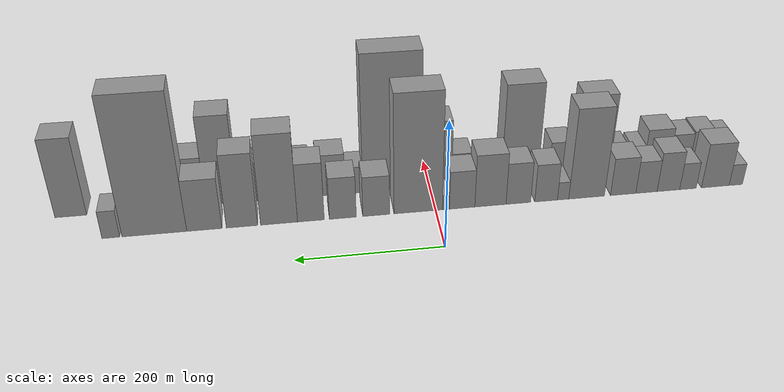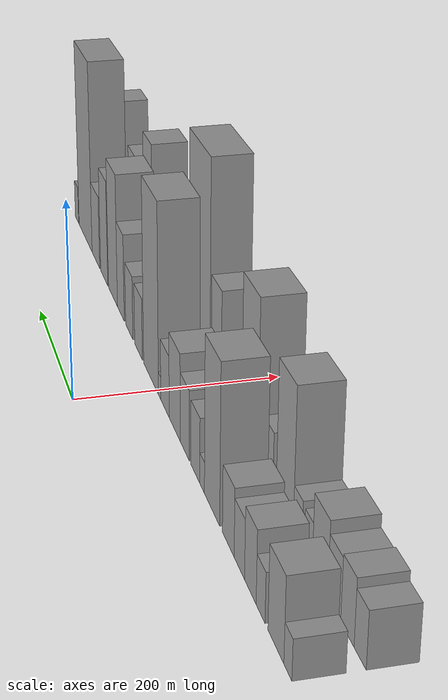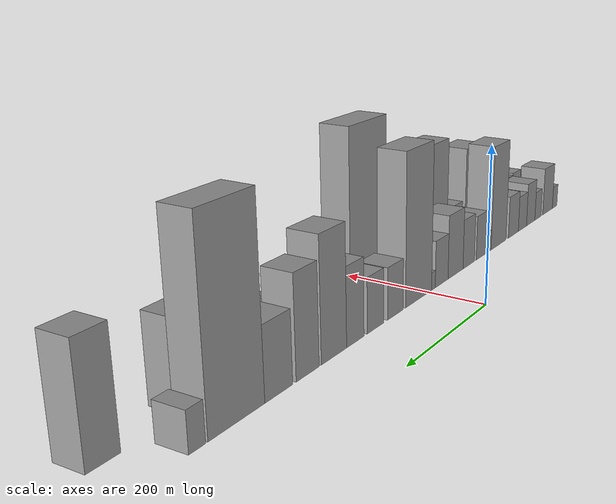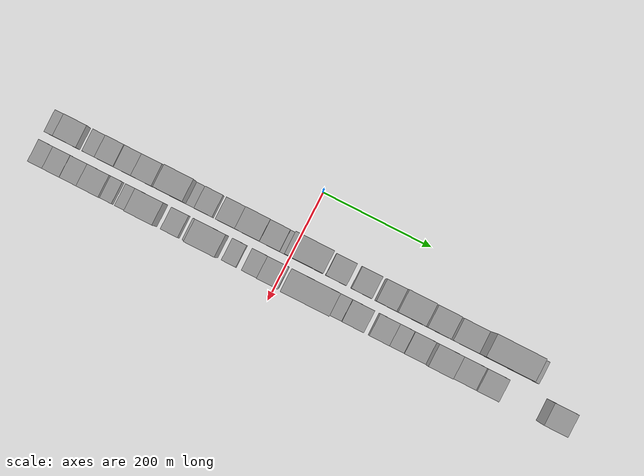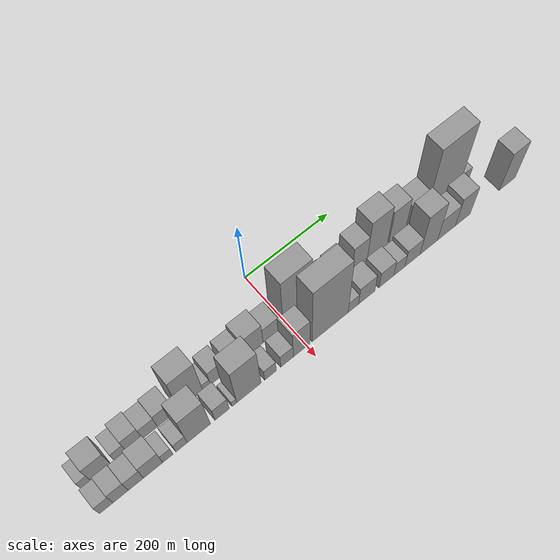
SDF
<sdf version="1.6">
 <world name="default">
  <scene>
   <sky><clouds><speed>12</speed></clouds></sky>
   <ambient>0.4 0.4 0.4 1</ambient>
   <background>0.7 0.7 0.7 1</background>
   <shadows>1</shadows>
  </scene>
  <gravity>0 0 -9.8066</gravity>
  <magnetic_field>6e-06 2.3e-05 -4.2e-05</magnetic_field>
  <physics default="0" name="default_physics" type="ode">
   <ode>
    <solver>
     <type>quick</type>
     <iters>10</iters>
     <sor>1.0</sor>
     <use_dynamic_moi_rescaling>0</use_dynamic_moi_rescaling>
    </solver>
    <constraints>
     <cfm>0</cfm>
     <erp>0.2</erp>
     <contact_max_correcting_vel>100</contact_max_correcting_vel>
     <contact_surface_layer>0.001</contact_surface_layer>
    </constraints>
   </ode>
   <max_step_size>0.004</max_step_size>
   <real_time_factor>1</real_time_factor>
   <real_time_update_rate>250</real_time_update_rate>
  </physics>
  <light name="sun" type="directional">
   <pose>0 0 10 0 0 0</pose>
   <diffuse>0.8 0.8 0.8 1</diffuse>
   <specular>0.2 0.2 0.2 1</specular>
   <attenuation>
    <range>1000</range>
    <constant>0.9</constant>
    <linear>0.01</linear>
    <quadratic>0.001</quadratic>
   </attenuation>
   <direction>-0.5 0.1 -0.9</direction>
  </light>
  <model name="building_1">
   <static>1</static>
   <pose>100.0000 -439.9194 0 0.000000 0.000000 0.000000</pose>
   <link name="link">
    <pose>0 0 18.00 0 0 0</pose>
    <collision name="collision"><geometry><box><size>40.0000 20.1612 36.0000</size></box></geometry></collision>
    <visual name="visual">
     <cast_shadows>0</cast_shadows>
     <geometry><box><size>40.0000 20.1612 36.0000</size></box></geometry>
     <material>
      <script>
       <uri>model://grey_wall/materials/scripts</uri>
       <uri>model://grey_wall/materials/textures</uri>
       <name>vrc/grey_wall</name>
      </script>
     </material>
    </visual>
   </link>
  </model>
  <model name="building_2">
   <static>1</static>
   <pose>100.0000 -408.8623 0 0.000000 0.000000 0.000000</pose>
   <link name="link">
    <pose>0 0 37.50 0 0 0</pose>
    <collision name="collision"><geometry><box><size>40.0000 41.9529 75.0000</size></box></geometry></collision>
    <visual name="visual">
     <cast_shadows>0</cast_shadows>
     <geometry><box><size>40.0000 41.9529 75.0000</size></box></geometry>
     <material>
      <script>
       <uri>model://grey_wall/materials/scripts</uri>
       <uri>model://grey_wall/materials/textures</uri>
       <name>vrc/grey_wall</name>
      </script>
     </material>
    </visual>
   </link>
  </model>
  <model name="building_3">
   <static>1</static>
   <pose>100.0000 -367.5131 0 0.000000 0.000000 0.000000</pose>
   <link name="link">
    <pose>0 0 22.50 0 0 0</pose>
    <collision name="collision"><geometry><box><size>40.0000 24.7454 45.0000</size></box></geometry></collision>
    <visual name="visual">
     <cast_shadows>0</cast_shadows>
     <geometry><box><size>40.0000 24.7454 45.0000</size></box></geometry>
     <material>
      <script>
       <uri>model://grey_wall/materials/scripts</uri>
       <uri>model://grey_wall/materials/textures</uri>
       <name>vrc/grey_wall</name>
      </script>
     </material>
    </visual>
   </link>
  </model>
  <model name="building_4">
   <static>1</static>
   <pose>100.0000 -338.2238 0 0.000000 0.000000 0.000000</pose>
   <link name="link">
    <pose>0 0 33.00 0 0 0</pose>
    <collision name="collision"><geometry><box><size>40.0000 33.8332 66.0000</size></box></geometry></collision>
    <visual name="visual">
     <cast_shadows>0</cast_shadows>
     <geometry><box><size>40.0000 33.8332 66.0000</size></box></geometry>
     <material>
      <script>
       <uri>model://grey_wall/materials/scripts</uri>
       <uri>model://grey_wall/materials/textures</uri>
       <name>vrc/grey_wall</name>
      </script>
     </material>
    </visual>
   </link>
  </model>
  <model name="building_5">
   <static>1</static>
   <pose>100.0000 -305.4389 0 0.000000 0.000000 0.000000</pose>
   <link name="link">
    <pose>0 0 27.00 0 0 0</pose>
    <collision name="collision"><geometry><box><size>40.0000 31.7366 54.0000</size></box></geometry></collision>
    <visual name="visual">
     <cast_shadows>0</cast_shadows>
     <geometry><box><size>40.0000 31.7366 54.0000</size></box></geometry>
     <material>
      <script>
       <uri>model://grey_wall/materials/scripts</uri>
       <uri>model://grey_wall/materials/textures</uri>
       <name>vrc/grey_wall</name>
      </script>
     </material>
    </visual>
   </link>
  </model>
  <model name="building_6">
   <static>1</static>
   <pose>100.0000 -270.8856 0 0.000000 0.000000 0.000000</pose>
   <link name="link">
    <pose>0 0 31.50 0 0 0</pose>
    <collision name="collision"><geometry><box><size>40.0000 37.3700 63.0000</size></box></geometry></collision>
    <visual name="visual">
     <cast_shadows>0</cast_shadows>
     <geometry><box><size>40.0000 37.3700 63.0000</size></box></geometry>
     <material>
      <script>
       <uri>model://grey_wall/materials/scripts</uri>
       <uri>model://grey_wall/materials/textures</uri>
       <name>vrc/grey_wall</name>
      </script>
     </material>
    </visual>
   </link>
  </model>
  <model name="building_7">
   <static>1</static>
   <pose>100.0000 -217.0525 0 0.000000 0.000000 0.000000</pose>
   <link name="link">
    <pose>0 0 75.00 0 0 0</pose>
    <collision name="collision"><geometry><box><size>40.0000 52.2962 150.0000</size></box></geometry></collision>
    <visual name="visual">
     <cast_shadows>0</cast_shadows>
     <geometry><box><size>40.0000 52.2962 150.0000</size></box></geometry>
     <material>
      <script>
       <uri>model://grey_wall/materials/scripts</uri>
       <uri>model://grey_wall/materials/textures</uri>
       <name>vrc/grey_wall</name>
      </script>
     </material>
    </visual>
   </link>
  </model>
  <model name="building_8">
   <static>1</static>
   <pose>100.0000 -182.6412 0 0.000000 0.000000 0.000000</pose>
   <link name="link">
    <pose>0 0 15.00 0 0 0</pose>
    <collision name="collision"><geometry><box><size>40.0000 16.5263 30.0000</size></box></geometry></collision>
    <visual name="visual">
     <cast_shadows>0</cast_shadows>
     <geometry><box><size>40.0000 16.5263 30.0000</size></box></geometry>
     <material>
      <script>
       <uri>model://grey_wall/materials/scripts</uri>
       <uri>model://grey_wall/materials/textures</uri>
       <name>vrc/grey_wall</name>
      </script>
     </material>
    </visual>
   </link>
  </model>
  <model name="building_9">
   <static>1</static>
   <pose>100.0000 -157.9032 0 0.000000 0.000000 0.000000</pose>
   <link name="link">
    <pose>0 0 31.50 0 0 0</pose>
    <collision name="collision"><geometry><box><size>40.0000 32.9497 63.0000</size></box></geometry></collision>
    <visual name="visual">
     <cast_shadows>0</cast_shadows>
     <geometry><box><size>40.0000 32.9497 63.0000</size></box></geometry>
     <material>
      <script>
       <uri>model://grey_wall/materials/scripts</uri>
       <uri>model://grey_wall/materials/textures</uri>
       <name>vrc/grey_wall</name>
      </script>
     </material>
    </visual>
   </link>
  </model>
  <model name="building_10">
   <static>1</static>
   <pose>100.0000 -117.6971 0 0.000000 0.000000 0.000000</pose>
   <link name="link">
    <pose>0 0 34.50 0 0 0</pose>
    <collision name="collision"><geometry><box><size>40.0000 35.4626 69.0000</size></box></geometry></collision>
    <visual name="visual">
     <cast_shadows>0</cast_shadows>
     <geometry><box><size>40.0000 35.4626 69.0000</size></box></geometry>
     <material>
      <script>
       <uri>model://grey_wall/materials/scripts</uri>
       <uri>model://grey_wall/materials/textures</uri>
       <name>vrc/grey_wall</name>
      </script>
     </material>
    </visual>
   </link>
  </model>
  <model name="building_11">
   <static>1</static>
   <pose>100.0000 -77.6243 0 0.000000 0.000000 0.000000</pose>
   <link name="link">
    <pose>0 0 43.50 0 0 0</pose>
    <collision name="collision"><geometry><box><size>40.0000 44.6830 87.0000</size></box></geometry></collision>
    <visual name="visual">
     <cast_shadows>0</cast_shadows>
     <geometry><box><size>40.0000 44.6830 87.0000</size></box></geometry>
     <material>
      <script>
       <uri>model://grey_wall/materials/scripts</uri>
       <uri>model://grey_wall/materials/textures</uri>
       <name>vrc/grey_wall</name>
      </script>
     </material>
    </visual>
   </link>
  </model>
  <model name="building_12">
   <static>1</static>
   <pose>100.0000 -37.1734 0 0.000000 0.000000 0.000000</pose>
   <link name="link">
    <pose>0 0 31.50 0 0 0</pose>
    <collision name="collision"><geometry><box><size>40.0000 36.2189 63.0000</size></box></geometry></collision>
    <visual name="visual">
     <cast_shadows>0</cast_shadows>
     <geometry><box><size>40.0000 36.2189 63.0000</size></box></geometry>
     <material>
      <script>
       <uri>model://grey_wall/materials/scripts</uri>
       <uri>model://grey_wall/materials/textures</uri>
       <name>vrc/grey_wall</name>
      </script>
     </material>
    </visual>
   </link>
  </model>
  <model name="building_13">
   <static>1</static>
   <pose>100.0000 -14.0614 0 0.000000 0.000000 0.000000</pose>
   <link name="link">
    <pose>0 0 12.00 0 0 0</pose>
    <collision name="collision"><geometry><box><size>40.0000 10.0052 24.0000</size></box></geometry></collision>
    <visual name="visual">
     <cast_shadows>0</cast_shadows>
     <geometry><box><size>40.0000 10.0052 24.0000</size></box></geometry>
     <material>
      <script>
       <uri>model://grey_wall/materials/scripts</uri>
       <uri>model://grey_wall/materials/textures</uri>
       <name>vrc/grey_wall</name>
      </script>
     </material>
    </visual>
   </link>
  </model>
  <model name="building_14">
   <static>1</static>
   <pose>100.0000 25.0052 0 0.000000 0.000000 0.000000</pose>
   <link name="link">
    <pose>0 0 97.50 0 0 0</pose>
    <collision name="collision"><geometry><box><size>40.0000 68.1280 195.0000</size></box></geometry></collision>
    <visual name="visual">
     <cast_shadows>0</cast_shadows>
     <geometry><box><size>40.0000 68.1280 195.0000</size></box></geometry>
     <material>
      <script>
       <uri>model://grey_wall/materials/scripts</uri>
       <uri>model://grey_wall/materials/textures</uri>
       <name>vrc/grey_wall</name>
      </script>
     </material>
    </visual>
   </link>
  </model>
  <model name="building_15">
   <static>1</static>
   <pose>100.0000 83.8592 0 0.000000 0.000000 0.000000</pose>
   <link name="link">
    <pose>0 0 33.00 0 0 0</pose>
    <collision name="collision"><geometry><box><size>40.0000 37.5799 66.0000</size></box></geometry></collision>
    <visual name="visual">
     <cast_shadows>0</cast_shadows>
     <geometry><box><size>40.0000 37.5799 66.0000</size></box></geometry>
     <material>
      <script>
       <uri>model://grey_wall/materials/scripts</uri>
       <uri>model://grey_wall/materials/textures</uri>
       <name>vrc/grey_wall</name>
      </script>
     </material>
    </visual>
   </link>
  </model>
  <model name="building_16">
   <static>1</static>
   <pose>100.0000 130.2846 0 0.000000 0.000000 0.000000</pose>
   <link name="link">
    <pose>0 0 34.50 0 0 0</pose>
    <collision name="collision"><geometry><box><size>40.0000 37.2710 69.0000</size></box></geometry></collision>
    <visual name="visual">
     <cast_shadows>0</cast_shadows>
     <geometry><box><size>40.0000 37.2710 69.0000</size></box></geometry>
     <material>
      <script>
       <uri>model://grey_wall/materials/scripts</uri>
       <uri>model://grey_wall/materials/textures</uri>
       <name>vrc/grey_wall</name>
      </script>
     </material>
    </visual>
   </link>
  </model>
  <model name="building_17">
   <static>1</static>
   <pose>100.0000 174.3056 0 0.000000 0.000000 0.000000</pose>
   <link name="link">
    <pose>0 0 48.00 0 0 0</pose>
    <collision name="collision"><geometry><box><size>40.0000 36.7710 96.0000</size></box></geometry></collision>
    <visual name="visual">
     <cast_shadows>0</cast_shadows>
     <geometry><box><size>40.0000 36.7710 96.0000</size></box></geometry>
     <material>
      <script>
       <uri>model://grey_wall/materials/scripts</uri>
       <uri>model://grey_wall/materials/textures</uri>
       <name>vrc/grey_wall</name>
      </script>
     </material>
    </visual>
   </link>
  </model>
  <model name="building_18">
   <static>1</static>
   <pose>100.0000 217.8623 0 0.000000 0.000000 0.000000</pose>
   <link name="link">
    <pose>0 0 73.50 0 0 0</pose>
    <collision name="collision"><geometry><box><size>40.0000 50.3425 147.0000</size></box></geometry></collision>
    <visual name="visual">
     <cast_shadows>0</cast_shadows>
     <geometry><box><size>40.0000 50.3425 147.0000</size></box></geometry>
     <material>
      <script>
       <uri>model://grey_wall/materials/scripts</uri>
       <uri>model://grey_wall/materials/textures</uri>
       <name>vrc/grey_wall</name>
      </script>
     </material>
    </visual>
   </link>
  </model>
  <model name="building_19">
   <static>1</static>
   <pose>100.0000 268.1823 0 0.000000 0.000000 0.000000</pose>
   <link name="link">
    <pose>0 0 60.00 0 0 0</pose>
    <collision name="collision"><geometry><box><size>40.0000 42.2976 120.0000</size></box></geometry></collision>
    <visual name="visual">
     <cast_shadows>0</cast_shadows>
     <geometry><box><size>40.0000 42.2976 120.0000</size></box></geometry>
     <material>
      <script>
       <uri>model://grey_wall/materials/scripts</uri>
       <uri>model://grey_wall/materials/textures</uri>
       <name>vrc/grey_wall</name>
      </script>
     </material>
    </visual>
   </link>
  </model>
  <model name="building_20">
   <static>1</static>
   <pose>100.0000 318.9130 0 0.000000 0.000000 0.000000</pose>
   <link name="link">
    <pose>0 0 42.00 0 0 0</pose>
    <collision name="collision"><geometry><box><size>40.0000 47.1638 84.0000</size></box></geometry></collision>
    <visual name="visual">
     <cast_shadows>0</cast_shadows>
     <geometry><box><size>40.0000 47.1638 84.0000</size></box></geometry>
     <material>
      <script>
       <uri>model://grey_wall/materials/scripts</uri>
       <uri>model://grey_wall/materials/textures</uri>
       <name>vrc/grey_wall</name>
      </script>
     </material>
    </visual>
   </link>
  </model>
  <model name="building_21">
   <static>1</static>
   <pose>100.0000 385.4231 0 0.000000 0.000000 0.000000</pose>
   <link name="link">
    <pose>0 0 111.00 0 0 0</pose>
    <collision name="collision"><geometry><box><size>40.0000 85.8564 222.0000</size></box></geometry></collision>
    <visual name="visual">
     <cast_shadows>0</cast_shadows>
     <geometry><box><size>40.0000 85.8564 222.0000</size></box></geometry>
     <material>
      <script>
       <uri>model://grey_wall/materials/scripts</uri>
       <uri>model://grey_wall/materials/textures</uri>
       <name>vrc/grey_wall</name>
      </script>
     </material>
    </visual>
   </link>
  </model>
  <model name="building_22">
   <static>1</static>
   <pose>100.0000 443.0006 0 0.000000 0.000000 0.000000</pose>
   <link name="link">
    <pose>0 0 22.50 0 0 0</pose>
    <collision name="collision"><geometry><box><size>40.0000 23.2986 45.0000</size></box></geometry></collision>
    <visual name="visual">
     <cast_shadows>0</cast_shadows>
     <geometry><box><size>40.0000 23.2986 45.0000</size></box></geometry>
     <material>
      <script>
       <uri>model://grey_wall/materials/scripts</uri>
       <uri>model://grey_wall/materials/textures</uri>
       <name>vrc/grey_wall</name>
      </script>
     </material>
    </visual>
   </link>
  </model>
  <model name="building_23">
   <static>1</static>
   <pose>155.0000 -436.3856 0 0.000000 0.000000 0.000000</pose>
   <link name="link">
    <pose>0 0 25.50 0 0 0</pose>
    <collision name="collision"><geometry><box><size>40.0000 27.2289 51.0000</size></box></geometry></collision>
    <visual name="visual">
     <cast_shadows>0</cast_shadows>
     <geometry><box><size>40.0000 27.2289 51.0000</size></box></geometry>
     <material>
      <script>
       <uri>model://grey_wall/materials/scripts</uri>
       <uri>model://grey_wall/materials/textures</uri>
       <name>vrc/grey_wall</name>
      </script>
     </material>
    </visual>
   </link>
  </model>
  <model name="building_24">
   <static>1</static>
   <pose>155.0000 -407.1011 0 0.000000 0.000000 0.000000</pose>
   <link name="link">
    <pose>0 0 30.00 0 0 0</pose>
    <collision name="collision"><geometry><box><size>40.0000 31.3400 60.0000</size></box></geometry></collision>
    <visual name="visual">
     <cast_shadows>0</cast_shadows>
     <geometry><box><size>40.0000 31.3400 60.0000</size></box></geometry>
     <material>
      <script>
       <uri>model://grey_wall/materials/scripts</uri>
       <uri>model://grey_wall/materials/textures</uri>
       <name>vrc/grey_wall</name>
      </script>
     </material>
    </visual>
   </link>
  </model>
  <model name="building_25">
   <static>1</static>
   <pose>155.0000 -375.5939 0 0.000000 0.000000 0.000000</pose>
   <link name="link">
    <pose>0 0 28.50 0 0 0</pose>
    <collision name="collision"><geometry><box><size>40.0000 31.6745 57.0000</size></box></geometry></collision>
    <visual name="visual">
     <cast_shadows>0</cast_shadows>
     <geometry><box><size>40.0000 31.6745 57.0000</size></box></geometry>
     <material>
      <script>
       <uri>model://grey_wall/materials/scripts</uri>
       <uri>model://grey_wall/materials/textures</uri>
       <name>vrc/grey_wall</name>
      </script>
     </material>
    </visual>
   </link>
  </model>
  <model name="building_26">
   <static>1</static>
   <pose>155.0000 -339.7541 0 0.000000 0.000000 0.000000</pose>
   <link name="link">
    <pose>0 0 34.50 0 0 0</pose>
    <collision name="collision"><geometry><box><size>40.0000 40.0052 69.0000</size></box></geometry></collision>
    <visual name="visual">
     <cast_shadows>0</cast_shadows>
     <geometry><box><size>40.0000 40.0052 69.0000</size></box></geometry>
     <material>
      <script>
       <uri>model://grey_wall/materials/scripts</uri>
       <uri>model://grey_wall/materials/textures</uri>
       <name>vrc/grey_wall</name>
      </script>
     </material>
    </visual>
   </link>
  </model>
  <model name="building_27">
   <static>1</static>
   <pose>155.0000 -308.9170 0 0.000000 0.000000 0.000000</pose>
   <link name="link">
    <pose>0 0 21.00 0 0 0</pose>
    <collision name="collision"><geometry><box><size>40.0000 21.6690 42.0000</size></box></geometry></collision>
    <visual name="visual">
     <cast_shadows>0</cast_shadows>
     <geometry><box><size>40.0000 21.6690 42.0000</size></box></geometry>
     <material>
      <script>
       <uri>model://grey_wall/materials/scripts</uri>
       <uri>model://grey_wall/materials/textures</uri>
       <name>vrc/grey_wall</name>
      </script>
     </material>
    </visual>
   </link>
  </model>
  <model name="building_28">
   <static>1</static>
   <pose>155.0000 -279.9060 0 0.000000 0.000000 0.000000</pose>
   <link name="link">
    <pose>0 0 22.50 0 0 0</pose>
    <collision name="collision"><geometry><box><size>40.0000 24.3530 45.0000</size></box></geometry></collision>
    <visual name="visual">
     <cast_shadows>0</cast_shadows>
     <geometry><box><size>40.0000 24.3530 45.0000</size></box></geometry>
     <material>
      <script>
       <uri>model://grey_wall/materials/scripts</uri>
       <uri>model://grey_wall/materials/textures</uri>
       <name>vrc/grey_wall</name>
      </script>
     </material>
    </visual>
   </link>
  </model>
  <model name="building_29">
   <static>1</static>
   <pose>155.0000 -242.6486 0 0.000000 0.000000 0.000000</pose>
   <link name="link">
    <pose>0 0 67.50 0 0 0</pose>
    <collision name="collision"><geometry><box><size>40.0000 50.1618 135.0000</size></box></geometry></collision>
    <visual name="visual">
     <cast_shadows>0</cast_shadows>
     <geometry><box><size>40.0000 50.1618 135.0000</size></box></geometry>
     <material>
      <script>
       <uri>model://grey_wall/materials/scripts</uri>
       <uri>model://grey_wall/materials/textures</uri>
       <name>vrc/grey_wall</name>
      </script>
     </material>
    </visual>
   </link>
  </model>
  <model name="building_30">
   <static>1</static>
   <pose>155.0000 -191.8955 0 0.000000 0.000000 0.000000</pose>
   <link name="link">
    <pose>0 0 30.00 0 0 0</pose>
    <collision name="collision"><geometry><box><size>40.0000 31.3442 60.0000</size></box></geometry></collision>
    <visual name="visual">
     <cast_shadows>0</cast_shadows>
     <geometry><box><size>40.0000 31.3442 60.0000</size></box></geometry>
     <material>
      <script>
       <uri>model://grey_wall/materials/scripts</uri>
       <uri>model://grey_wall/materials/textures</uri>
       <name>vrc/grey_wall</name>
      </script>
     </material>
    </visual>
   </link>
  </model>
  <model name="building_31">
   <static>1</static>
   <pose>155.0000 -165.0269 0 0.000000 0.000000 0.000000</pose>
   <link name="link">
    <pose>0 0 12.00 0 0 0</pose>
    <collision name="collision"><geometry><box><size>40.0000 10.3930 24.0000</size></box></geometry></collision>
    <visual name="visual">
     <cast_shadows>0</cast_shadows>
     <geometry><box><size>40.0000 10.3930 24.0000</size></box></geometry>
     <material>
      <script>
       <uri>model://grey_wall/materials/scripts</uri>
       <uri>model://grey_wall/materials/textures</uri>
       <name>vrc/grey_wall</name>
      </script>
     </material>
    </visual>
   </link>
  </model>
  <model name="building_32">
   <static>1</static>
   <pose>155.0000 -132.5323 0 0.000000 0.000000 0.000000</pose>
   <link name="link">
    <pose>0 0 81.00 0 0 0</pose>
    <collision name="collision"><geometry><box><size>40.0000 54.5962 162.0000</size></box></geometry></collision>
    <visual name="visual">
     <cast_shadows>0</cast_shadows>
     <geometry><box><size>40.0000 54.5962 162.0000</size></box></geometry>
     <material>
      <script>
       <uri>model://grey_wall/materials/scripts</uri>
       <uri>model://grey_wall/materials/textures</uri>
       <name>vrc/grey_wall</name>
      </script>
     </material>
    </visual>
   </link>
  </model>
  <model name="building_33">
   <static>1</static>
   <pose>155.0000 -83.9665 0 0.000000 0.000000 0.000000</pose>
   <link name="link">
    <pose>0 0 24.00 0 0 0</pose>
    <collision name="collision"><geometry><box><size>40.0000 26.5356 48.0000</size></box></geometry></collision>
    <visual name="visual">
     <cast_shadows>0</cast_shadows>
     <geometry><box><size>40.0000 26.5356 48.0000</size></box></geometry>
     <material>
      <script>
       <uri>model://grey_wall/materials/scripts</uri>
       <uri>model://grey_wall/materials/textures</uri>
       <name>vrc/grey_wall</name>
      </script>
     </material>
    </visual>
   </link>
  </model>
  <model name="building_34">
   <static>1</static>
   <pose>155.0000 -46.2471 0 0.000000 0.000000 0.000000</pose>
   <link name="link">
    <pose>0 0 27.00 0 0 0</pose>
    <collision name="collision"><geometry><box><size>40.0000 28.9032 54.0000</size></box></geometry></collision>
    <visual name="visual">
     <cast_shadows>0</cast_shadows>
     <geometry><box><size>40.0000 28.9032 54.0000</size></box></geometry>
     <material>
      <script>
       <uri>model://grey_wall/materials/scripts</uri>
       <uri>model://grey_wall/materials/textures</uri>
       <name>vrc/grey_wall</name>
      </script>
     </material>
    </visual>
   </link>
  </model>
  <model name="building_35">
   <static>1</static>
   <pose>155.0000 -12.5084 0 0.000000 0.000000 0.000000</pose>
   <link name="link">
    <pose>0 0 55.50 0 0 0</pose>
    <collision name="collision"><geometry><box><size>40.0000 38.5741 111.0000</size></box></geometry></collision>
    <visual name="visual">
     <cast_shadows>0</cast_shadows>
     <geometry><box><size>40.0000 38.5741 111.0000</size></box></geometry>
     <material>
      <script>
       <uri>model://grey_wall/materials/scripts</uri>
       <uri>model://grey_wall/materials/textures</uri>
       <name>vrc/grey_wall</name>
      </script>
     </material>
    </visual>
   </link>
  </model>
  <model name="building_36">
   <static>1</static>
   <pose>155.0000 54.4904 0 0.000000 0.000000 0.000000</pose>
   <link name="link">
    <pose>0 0 112.50 0 0 0</pose>
    <collision name="collision"><geometry><box><size>40.0000 85.4235 225.0000</size></box></geometry></collision>
    <visual name="visual">
     <cast_shadows>0</cast_shadows>
     <geometry><box><size>40.0000 85.4235 225.0000</size></box></geometry>
     <material>
      <script>
       <uri>model://grey_wall/materials/scripts</uri>
       <uri>model://grey_wall/materials/textures</uri>
       <name>vrc/grey_wall</name>
      </script>
     </material>
    </visual>
   </link>
  </model>
  <model name="building_37">
   <static>1</static>
   <pose>155.0000 109.7734 0 0.000000 0.000000 0.000000</pose>
   <link name="link">
    <pose>0 0 22.50 0 0 0</pose>
    <collision name="collision"><geometry><box><size>40.0000 25.1425 45.0000</size></box></geometry></collision>
    <visual name="visual">
     <cast_shadows>0</cast_shadows>
     <geometry><box><size>40.0000 25.1425 45.0000</size></box></geometry>
     <material>
      <script>
       <uri>model://grey_wall/materials/scripts</uri>
       <uri>model://grey_wall/materials/textures</uri>
       <name>vrc/grey_wall</name>
      </script>
     </material>
    </visual>
   </link>
  </model>
  <model name="building_38">
   <static>1</static>
   <pose>155.0000 142.2372 0 0.000000 0.000000 0.000000</pose>
   <link name="link">
    <pose>0 0 34.50 0 0 0</pose>
    <collision name="collision"><geometry><box><size>40.0000 39.7851 69.0000</size></box></geometry></collision>
    <visual name="visual">
     <cast_shadows>0</cast_shadows>
     <geometry><box><size>40.0000 39.7851 69.0000</size></box></geometry>
     <material>
      <script>
       <uri>model://grey_wall/materials/scripts</uri>
       <uri>model://grey_wall/materials/textures</uri>
       <name>vrc/grey_wall</name>
      </script>
     </material>
    </visual>
   </link>
  </model>
  <model name="building_39">
   <static>1</static>
   <pose>155.0000 190.5531 0 0.000000 0.000000 0.000000</pose>
   <link name="link">
    <pose>0 0 31.50 0 0 0</pose>
    <collision name="collision"><geometry><box><size>40.0000 36.8467 63.0000</size></box></geometry></collision>
    <visual name="visual">
     <cast_shadows>0</cast_shadows>
     <geometry><box><size>40.0000 36.8467 63.0000</size></box></geometry>
     <material>
      <script>
       <uri>model://grey_wall/materials/scripts</uri>
       <uri>model://grey_wall/materials/textures</uri>
       <name>vrc/grey_wall</name>
      </script>
     </material>
    </visual>
   </link>
  </model>
  <model name="building_40">
   <static>1</static>
   <pose>155.0000 222.5014 0 0.000000 0.000000 0.000000</pose>
   <link name="link">
    <pose>0 0 25.50 0 0 0</pose>
    <collision name="collision"><geometry><box><size>40.0000 27.0499 51.0000</size></box></geometry></collision>
    <visual name="visual">
     <cast_shadows>0</cast_shadows>
     <geometry><box><size>40.0000 27.0499 51.0000</size></box></geometry>
     <material>
      <script>
       <uri>model://grey_wall/materials/scripts</uri>
       <uri>model://grey_wall/materials/textures</uri>
       <name>vrc/grey_wall</name>
      </script>
     </material>
    </visual>
   </link>
  </model>
  <model name="building_41">
   <static>1</static>
   <pose>155.0000 255.2499 0 0.000000 0.000000 0.000000</pose>
   <link name="link">
    <pose>0 0 33.00 0 0 0</pose>
    <collision name="collision"><geometry><box><size>40.0000 38.4471 66.0000</size></box></geometry></collision>
    <visual name="visual">
     <cast_shadows>0</cast_shadows>
     <geometry><box><size>40.0000 38.4471 66.0000</size></box></geometry>
     <material>
      <script>
       <uri>model://grey_wall/materials/scripts</uri>
       <uri>model://grey_wall/materials/textures</uri>
       <name>vrc/grey_wall</name>
      </script>
     </material>
    </visual>
   </link>
  </model>
  <model name="building_42">
   <static>1</static>
   <pose>155.0000 296.6075 0 0.000000 0.000000 0.000000</pose>
   <link name="link">
    <pose>0 0 73.50 0 0 0</pose>
    <collision name="collision"><geometry><box><size>40.0000 44.2681 147.0000</size></box></geometry></collision>
    <visual name="visual">
     <cast_shadows>0</cast_shadows>
     <geometry><box><size>40.0000 44.2681 147.0000</size></box></geometry>
     <material>
      <script>
       <uri>model://grey_wall/materials/scripts</uri>
       <uri>model://grey_wall/materials/textures</uri>
       <name>vrc/grey_wall</name>
      </script>
     </material>
    </visual>
   </link>
  </model>
  <model name="building_43">
   <static>1</static>
   <pose>155.0000 341.8196 0 0.000000 0.000000 0.000000</pose>
   <link name="link">
    <pose>0 0 40.50 0 0 0</pose>
    <collision name="collision"><geometry><box><size>40.0000 46.1561 81.0000</size></box></geometry></collision>
    <visual name="visual">
     <cast_shadows>0</cast_shadows>
     <geometry><box><size>40.0000 46.1561 81.0000</size></box></geometry>
     <material>
      <script>
       <uri>model://grey_wall/materials/scripts</uri>
       <uri>model://grey_wall/materials/textures</uri>
       <name>vrc/grey_wall</name>
      </script>
     </material>
    </visual>
   </link>
  </model>
  <model name="building_44">
   <static>1</static>
   <pose>155.0000 384.5488 0 0.000000 0.000000 0.000000</pose>
   <link name="link">
    <pose>0 0 51.00 0 0 0</pose>
    <collision name="collision"><geometry><box><size>40.0000 39.3023 102.0000</size></box></geometry></collision>
    <visual name="visual">
     <cast_shadows>0</cast_shadows>
     <geometry><box><size>40.0000 39.3023 102.0000</size></box></geometry>
     <material>
      <script>
       <uri>model://grey_wall/materials/scripts</uri>
       <uri>model://grey_wall/materials/textures</uri>
       <name>vrc/grey_wall</name>
      </script>
     </material>
    </visual>
   </link>
  </model>
  <model name="building_45">
   <static>1</static>
   <pose>155.0000 503.2973 0 0.000000 0.000000 0.000000</pose>
   <link name="link">
    <pose>0 0 64.50 0 0 0</pose>
    <collision name="collision"><geometry><box><size>40.0000 42.7316 129.0000</size></box></geometry></collision>
    <visual name="visual">
     <cast_shadows>0</cast_shadows>
     <geometry><box><size>40.0000 42.7316 129.0000</size></box></geometry>
     <material>
      <script>
       <uri>model://grey_wall/materials/scripts</uri>
       <uri>model://grey_wall/materials/textures</uri>
       <name>vrc/grey_wall</name>
      </script>
     </material>
    </visual>
   </link>
  </model>
 </world>
</sdf>
